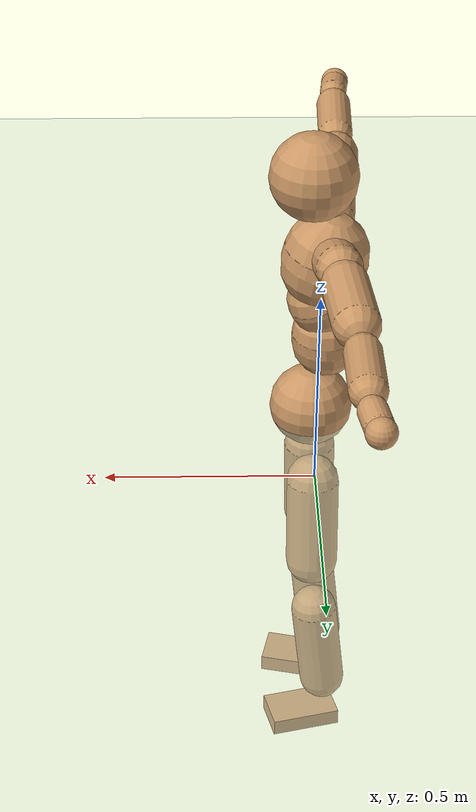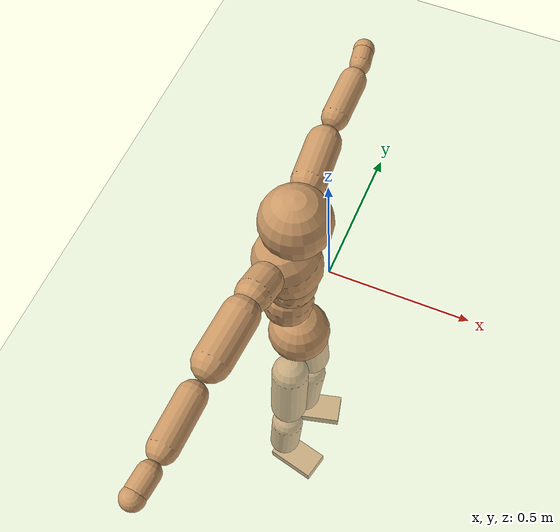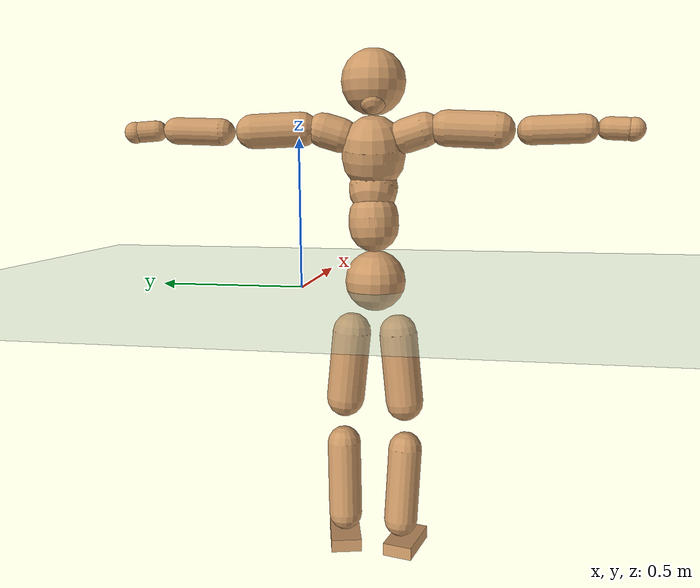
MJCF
<mujoco model="humanoid">
  <compiler coordinate="local"/>
  <default>
    <joint damping="0.0" armature="0.01" stiffness="0.0" limited="true"/>
    <geom conaffinity="1" condim="3" contype="7" margin="0.001" rgba="0.8 0.6 .4 1"/>
  </default>
  <asset>
    <texture type="skybox" builtin="gradient" rgb1=".4 .5 .6" rgb2="0 0 0" width="100" height="100"/>
    <texture builtin="flat" height="1278" mark="cross" markrgb="1 1 1" name="texgeom" random="0.01" rgb1="0.8 0.6 0.4" rgb2="0.8 0.6 0.4" type="cube" width="127"/>
    <texture builtin="checker" height="100" name="texplane" rgb1="0 0 0" rgb2="0.8 0.8 0.8" type="2d" width="100"/>
    <material name="MatPlane" reflectance="0.5" shininess="1" specular="1" texrepeat="60 60" texture="texplane"/>
    <material name="geom" texture="texgeom" texuniform="true"/>
  </asset>
  <worldbody>
    <light cutoff="100" diffuse="1 1 1" dir="-0 0 -1.3" directional="true" exponent="1" pos="0 0 1.3" specular=".1 .1 .1"/>
    <geom conaffinity="1" condim="3" name="floor" pos="0 0 0" rgba="0.8 0.9 0.8 1" size="100 100 .2" type="plane" material="MatPlane"/>
    <body name="Pelvis" pos="-0.0016 -0.2571 0.0302">
      <freejoint name="Pelvis"/>
      <geom type="sphere" contype="1" conaffinity="1" density="500" size="0.1020" pos="0.0000 0.0000 0.0000" name="Pelvis"/>
      <body name="L_Hip" pos="-0.0053 0.0731 -0.0992">
        <joint name="L_Hip_x" type="hinge" pos="0 0 0" axis="1 0 0" stiffness="800" damping="80" armature="0.02" range="-180.0000 180.0000"/>
        <joint name="L_Hip_y" type="hinge" pos="0 0 0" axis="0 1 0" stiffness="800" damping="80" armature="0.02" range="-180.0000 180.0000"/>
        <joint name="L_Hip_z" type="hinge" pos="0 0 0" axis="0 0 1" stiffness="800" damping="80" armature="0.02" range="-180.0000 180.0000"/>
        <geom type="capsule" contype="1" conaffinity="1" density="500" fromto="-0.0007 0.0076 -0.0785 -0.0026 0.0303 -0.3141" size="0.0651" name="L_Hip"/>
        <body name="L_Knee" pos="-0.0033 0.0379 -0.3927">
          <joint name="L_Knee_x" type="hinge" pos="0 0 0" axis="1 0 0" stiffness="800" damping="80" armature="0.02" range="-180.0000 180.0000"/>
          <joint name="L_Knee_y" type="hinge" pos="0 0 0" axis="0 1 0" stiffness="800" damping="80" armature="0.02" range="-180.0000 180.0000"/>
          <joint name="L_Knee_z" type="hinge" pos="0 0 0" axis="0 0 1" stiffness="800" damping="80" armature="0.02" range="-180.0000 180.0000"/>
          <geom type="capsule" contype="1" conaffinity="1" density="500" fromto="-0.0094 -0.0031 -0.0835 -0.0374 -0.0125 -0.3338" size="0.0579" name="L_Knee"/>
          <body name="L_Ankle" pos="-0.0468 -0.0156 -0.4173">
            <joint name="L_Ankle_x" type="hinge" pos="0 0 0" axis="1 0 0" stiffness="800" damping="80" armature="0.02" range="-180.0000 180.0000"/>
            <joint name="L_Ankle_y" type="hinge" pos="0 0 0" axis="0 1 0" stiffness="800" damping="80" armature="0.02" range="-180.0000 180.0000"/>
            <joint name="L_Ankle_z" type="hinge" pos="0 0 0" axis="0 0 1" stiffness="800" damping="80" armature="0.02" range="-180.0000 180.0000"/>
            <geom type="box" contype="1" conaffinity="1" density="500" pos="0.0631 0.0155 -0.0291" size="0.0888 0.0531 0.022" quat="0.9927 0.0000 0.0000 0.1205" name="L_Ankle"/>
            <body name="L_Toe" pos="0.1261 0.0311 -0.0582">
              <joint name="L_Toe_x" type="hinge" pos="0 0 0" axis="1 0 0" stiffness="500" damping="50" armature="0.02" range="-180.0000 180.0000"/>
              <joint name="L_Toe_y" type="hinge" pos="0 0 0" axis="0 1 0" stiffness="500" damping="50" armature="0.02" range="-180.0000 180.0000"/>
              <joint name="L_Toe_z" type="hinge" pos="0 0 0" axis="0 0 1" stiffness="500" damping="50" armature="0.02" range="-180.0000 180.0000"/>
              <geom type="box" contype="1" conaffinity="1" density="500" pos="0.0000 0.0000 0.0290" size="0.0011 0.0025 0.0011" quat="0.9920 0.0000 0.0000 0.1260" name="L_Toe"/>
            </body>
          </body>
        </body>
      </body>
      <body name="R_Hip" pos="-0.0036 -0.0709 -0.0978">
        <joint name="R_Hip_x" type="hinge" pos="0 0 0" axis="1 0 0" stiffness="800" damping="80" armature="0.02" range="-180.0000 180.0000"/>
        <joint name="R_Hip_y" type="hinge" pos="0 0 0" axis="0 1 0" stiffness="800" damping="80" armature="0.02" range="-180.0000 180.0000"/>
        <joint name="R_Hip_z" type="hinge" pos="0 0 0" axis="0 0 1" stiffness="800" damping="80" armature="0.02" range="-180.0000 180.0000"/>
        <geom type="capsule" contype="1" conaffinity="1" density="500" fromto="-0.0018 -0.0083 -0.0804 -0.0073 -0.0330 -0.3215" size="0.064" name="R_Hip"/>
        <body name="R_Knee" pos="-0.0092 -0.0413 -0.4018">
          <joint name="R_Knee_x" type="hinge" pos="0 0 0" axis="1 0 0" stiffness="800" damping="80" armature="0.02" range="-180.0000 180.0000"/>
          <joint name="R_Knee_y" type="hinge" pos="0 0 0" axis="0 1 0" stiffness="800" damping="80" armature="0.02" range="-180.0000 180.0000"/>
          <joint name="R_Knee_z" type="hinge" pos="0 0 0" axis="0 0 1" stiffness="800" damping="80" armature="0.02" range="-180.0000 180.0000"/>
          <geom type="capsule" contype="1" conaffinity="1" density="500" fromto="-0.0091 0.0035 -0.0838 -0.0365 0.0141 -0.3351" size="0.0578" name="R_Knee"/>
          <body name="R_Ankle" pos="-0.0456 0.0176 -0.4189">
            <joint name="R_Ankle_x" type="hinge" pos="0 0 0" axis="1 0 0" stiffness="800" damping="80" armature="0.02" range="-180.0000 180.0000"/>
            <joint name="R_Ankle_y" type="hinge" pos="0 0 0" axis="0 1 0" stiffness="800" damping="80" armature="0.02" range="-180.0000 180.0000"/>
            <joint name="R_Ankle_z" type="hinge" pos="0 0 0" axis="0 0 1" stiffness="800" damping="80" armature="0.02" range="-180.0000 180.0000"/>
            <geom type="box" contype="1" conaffinity="1" density="500" pos="0.0654 -0.0151 -0.0256" size="0.0911 0.0516 0.0223" quat="0.9936 0.0000 0.0000 -0.1130" name="R_Ankle"/>
            <body name="R_Toe" pos="0.1308 -0.0301 -0.0512">
              <joint name="R_Toe_x" type="hinge" pos="0 0 0" axis="1 0 0" stiffness="500" damping="50" armature="0.02" range="-180.0000 180.0000"/>
              <joint name="R_Toe_y" type="hinge" pos="0 0 0" axis="0 1 0" stiffness="500" damping="50" armature="0.02" range="-180.0000 180.0000"/>
              <joint name="R_Toe_z" type="hinge" pos="0 0 0" axis="0 0 1" stiffness="500" damping="50" armature="0.02" range="-180.0000 180.0000"/>
              <geom type="box" contype="1" conaffinity="1" density="500" pos="0.0000 0.0000 0.0262" size="0.0011 0.0025 0.0011" quat="0.9946 0.0000 0.0000 -0.1042" name="R_Toe"/>
            </body>
          </body>
        </body>
      </body>
      <body name="Torso" pos="-0.0333 -0.0027 0.1213">
        <joint name="Torso_x" type="hinge" pos="0 0 0" axis="1 0 0" stiffness="1000" damping="100" armature="0.02" range="-180.0000 180.0000"/>
        <joint name="Torso_y" type="hinge" pos="0 0 0" axis="0 1 0" stiffness="1000" damping="100" armature="0.02" range="-180.0000 180.0000"/>
        <joint name="Torso_z" type="hinge" pos="0 0 0" axis="0 0 1" stiffness="1000" damping="100" armature="0.02" range="-180.0000 180.0000"/>
        <geom type="capsule" contype="1" conaffinity="1" density="500" fromto="0.0023 0.0045 0.0935 0.0015 0.0030 0.0623" size="0.0824" name="Torso"/>
        <body name="Spine" pos="0.0039 0.0075 0.1558">
          <joint name="Spine_x" type="hinge" pos="0 0 0" axis="1 0 0" stiffness="1000" damping="100" armature="0.02" range="-180.0000 180.0000"/>
          <joint name="Spine_y" type="hinge" pos="0 0 0" axis="0 1 0" stiffness="1000" damping="100" armature="0.02" range="-180.0000 180.0000"/>
          <joint name="Spine_z" type="hinge" pos="0 0 0" axis="0 0 1" stiffness="1000" damping="100" armature="0.02" range="-180.0000 180.0000"/>
          <geom type="capsule" contype="1" conaffinity="1" density="500" fromto="0.0156 0.0002 0.0366 0.0104 0.0001 0.0244" size="0.0802" name="Spine"/>
          <body name="Chest" pos="0.0259 0.0003 0.061">
            <joint name="Chest_x" type="hinge" pos="0 0 0" axis="1 0 0" stiffness="1000" damping="100" armature="0.02" range="-180.0000 180.0000"/>
            <joint name="Chest_y" type="hinge" pos="0 0 0" axis="0 1 0" stiffness="1000" damping="100" armature="0.02" range="-180.0000 180.0000"/>
            <joint name="Chest_z" type="hinge" pos="0 0 0" axis="0 0 1" stiffness="1000" damping="100" armature="0.02" range="-180.0000 180.0000"/>
            <geom type="capsule" contype="1" conaffinity="1" density="500" fromto="-0.0231 -0.0014 0.0994 -0.0154 -0.0009 0.0662" size="0.1032" name="Chest"/>
            <body name="Neck" pos="-0.042 -0.003 0.2355">
              <joint name="Neck_x" type="hinge" pos="0 0 0" axis="1 0 0" stiffness="500" damping="50" armature="0.02" range="-180.0000 180.0000"/>
              <joint name="Neck_y" type="hinge" pos="0 0 0" axis="0 1 0" stiffness="500" damping="50" armature="0.02" range="-180.0000 180.0000"/>
              <joint name="Neck_z" type="hinge" pos="0 0 0" axis="0 0 1" stiffness="500" damping="50" armature="0.02" range="-180.0000 180.0000"/>
              <geom type="capsule" contype="1" conaffinity="1" density="500" fromto="0.0109 0.0014 0.0145 0.0438 0.0055 0.0581" size="0.0469" name="Neck"/>
              <body name="Head" pos="0.0547 0.0068 0.0727">
                <joint name="Head_x" type="hinge" pos="0 0 0" axis="1 0 0" stiffness="500" damping="50" armature="0.02" range="-180.0000 180.0000"/>
                <joint name="Head_y" type="hinge" pos="0 0 0" axis="0 1 0" stiffness="500" damping="50" armature="0.02" range="-180.0000 180.0000"/>
                <joint name="Head_z" type="hinge" pos="0 0 0" axis="0 0 1" stiffness="500" damping="50" armature="0.02" range="-180.0000 180.0000"/>
                <geom type="sphere" contype="1" conaffinity="1" density="500" size="0.1058" pos="0.0000 0.0000 0.0000" name="Head"/>
              </body>
            </body>
            <body name="L_Thorax" pos="-0.0342 0.082 0.1325">
              <joint name="L_Thorax_x" type="hinge" pos="0 0 0" axis="1 0 0" stiffness="500" damping="50" armature="0.02" range="-180.0000 180.0000"/>
              <joint name="L_Thorax_y" type="hinge" pos="0 0 0" axis="0 1 0" stiffness="500" damping="50" armature="0.02" range="-180.0000 180.0000"/>
              <joint name="L_Thorax_z" type="hinge" pos="0 0 0" axis="0 0 1" stiffness="500" damping="50" armature="0.02" range="-180.0000 180.0000"/>
              <geom type="capsule" contype="1" conaffinity="1" density="500" fromto="-0.0020 0.0189 0.0056 -0.0079 0.0755 0.0225" size="0.0555" name="L_Thorax"/>
              <body name="L_Shoulder" pos="-0.0099 0.0944 0.0281">
                <joint name="L_Shoulder_x" type="hinge" pos="0 0 0" axis="1 0 0" stiffness="500" damping="50" armature="0.02" range="-720.0000 720.0000"/>
                <joint name="L_Shoulder_y" type="hinge" pos="0 0 0" axis="0 1 0" stiffness="500" damping="50" armature="0.02" range="-720.0000 720.0000"/>
                <joint name="L_Shoulder_z" type="hinge" pos="0 0 0" axis="0 0 1" stiffness="500" damping="50" armature="0.02" range="-720.0000 720.0000"/>
                <geom type="capsule" contype="1" conaffinity="1" density="500" fromto="-0.0054 0.0527 -0.0025 -0.0217 0.2109 -0.0099" size="0.0553" name="L_Shoulder"/>
                <body name="L_Elbow" pos="-0.0271 0.2637 -0.0124">
                  <joint name="L_Elbow_x" type="hinge" pos="0 0 0" axis="1 0 0" stiffness="500" damping="50" armature="0.02" range="-720.0000 720.0000"/>
                  <joint name="L_Elbow_y" type="hinge" pos="0 0 0" axis="0 1 0" stiffness="500" damping="50" armature="0.02" range="-720.0000 720.0000"/>
                  <joint name="L_Elbow_z" type="hinge" pos="0 0 0" axis="0 0 1" stiffness="500" damping="50" armature="0.02" range="-720.0000 720.0000"/>
                  <geom type="capsule" contype="1" conaffinity="1" density="500" fromto="-0.0003 0.0510 0.0017 -0.0011 0.2041 0.0067" size="0.0433" name="L_Elbow"/>
                  <body name="L_Wrist" pos="-0.0014 0.2552 0.0083">
                    <joint name="L_Wrist_x" type="hinge" pos="0 0 0" axis="1 0 0" stiffness="300" damping="30" armature="0.02" range="-180.0000 180.0000"/>
                    <joint name="L_Wrist_y" type="hinge" pos="0 0 0" axis="0 1 0" stiffness="300" damping="30" armature="0.02" range="-180.0000 180.0000"/>
                    <joint name="L_Wrist_z" type="hinge" pos="0 0 0" axis="0 0 1" stiffness="300" damping="30" armature="0.02" range="-180.0000 180.0000"/>
                    <geom type="capsule" contype="1" conaffinity="1" density="500" fromto="-0.0032 0.0175 -0.0014 -0.0130 0.0700 -0.0056" size="0.0335" name="L_Wrist"/>
                    <body name="L_Hand" pos="-0.0162 0.0875 -0.007">
                      <joint name="L_Hand_x" type="hinge" pos="0 0 0" axis="1 0 0" stiffness="300" damping="30" armature="0.02" range="-180.0000 180.0000"/>
                      <joint name="L_Hand_y" type="hinge" pos="0 0 0" axis="0 1 0" stiffness="300" damping="30" armature="0.02" range="-180.0000 180.0000"/>
                      <joint name="L_Hand_z" type="hinge" pos="0 0 0" axis="0 0 1" stiffness="300" damping="30" armature="0.02" range="-180.0000 180.0000"/>
                      <geom type="sphere" contype="1" conaffinity="1" density="500" size="0.0350" pos="0.0000 0.0000 0.0000" name="L_Hand"/>
                    </body>
                  </body>
                </body>
              </body>
            </body>
            <body name="R_Thorax" pos="-0.0391 -0.0859 0.1288">
              <joint name="R_Thorax_x" type="hinge" pos="0 0 0" axis="1 0 0" stiffness="500" damping="50" armature="0.02" range="-180.0000 180.0000"/>
              <joint name="R_Thorax_y" type="hinge" pos="0 0 0" axis="0 1 0" stiffness="500" damping="50" armature="0.02" range="-180.0000 180.0000"/>
              <joint name="R_Thorax_z" type="hinge" pos="0 0 0" axis="0 0 1" stiffness="500" damping="50" armature="0.02" range="-180.0000 180.0000"/>
              <geom type="capsule" contype="1" conaffinity="1" density="500" fromto="-0.0015 -0.0203 0.0064 -0.0061 -0.0813 0.0254" size="0.0547" name="R_Thorax"/>
              <body name="R_Shoulder" pos="-0.0076 -0.1016 0.0318">
                <joint name="R_Shoulder_x" type="hinge" pos="0 0 0" axis="1 0 0" stiffness="500" damping="50" armature="0.02" range="-720.0000 720.0000"/>
                <joint name="R_Shoulder_y" type="hinge" pos="0 0 0" axis="0 1 0" stiffness="500" damping="50" armature="0.02" range="-720.0000 720.0000"/>
                <joint name="R_Shoulder_z" type="hinge" pos="0 0 0" axis="0 0 1" stiffness="500" damping="50" armature="0.02" range="-720.0000 720.0000"/>
                <geom type="capsule" contype="1" conaffinity="1" density="500" fromto="-0.0046 -0.0518 -0.0027 -0.0184 -0.2072 -0.0110" size="0.0568" name="R_Shoulder"/>
                <body name="R_Elbow" pos="-0.0231 -0.259 -0.0137">
                  <joint name="R_Elbow_x" type="hinge" pos="0 0 0" axis="1 0 0" stiffness="500" damping="50" armature="0.02" range="-720.0000 720.0000"/>
                  <joint name="R_Elbow_y" type="hinge" pos="0 0 0" axis="0 1 0" stiffness="500" damping="50" armature="0.02" range="-720.0000 720.0000"/>
                  <joint name="R_Elbow_z" type="hinge" pos="0 0 0" axis="0 0 1" stiffness="500" damping="50" armature="0.02" range="-720.0000 720.0000"/>
                  <geom type="capsule" contype="1" conaffinity="1" density="500" fromto="-0.0014 -0.0523 0.0014 -0.0054 -0.2093 0.0057" size="0.0437" name="R_Elbow"/>
                  <body name="R_Wrist" pos="-0.0068 -0.2616 0.0071">
                    <joint name="R_Wrist_x" type="hinge" pos="0 0 0" axis="1 0 0" stiffness="300" damping="30" armature="0.02" range="-180.0000 180.0000"/>
                    <joint name="R_Wrist_y" type="hinge" pos="0 0 0" axis="0 1 0" stiffness="300" damping="30" armature="0.02" range="-180.0000 180.0000"/>
                    <joint name="R_Wrist_z" type="hinge" pos="0 0 0" axis="0 0 1" stiffness="300" damping="30" armature="0.02" range="-180.0000 180.0000"/>
                    <geom type="capsule" contype="1" conaffinity="1" density="500" fromto="-0.0020 -0.0176 -0.0010 -0.0081 -0.0706 -0.0041" size="0.0343" name="R_Wrist"/>
                    <body name="R_Hand" pos="-0.0102 -0.0882 -0.0051">
                      <joint name="R_Hand_x" type="hinge" pos="0 0 0" axis="1 0 0" stiffness="300" damping="30" armature="0.02" range="-180.0000 180.0000"/>
                      <joint name="R_Hand_y" type="hinge" pos="0 0 0" axis="0 1 0" stiffness="300" damping="30" armature="0.02" range="-180.0000 180.0000"/>
                      <joint name="R_Hand_z" type="hinge" pos="0 0 0" axis="0 0 1" stiffness="300" damping="30" armature="0.02" range="-180.0000 180.0000"/>
                      <geom type="sphere" contype="1" conaffinity="1" density="500" size="0.0355" pos="0.0000 0.0000 0.0000" name="R_Hand"/>
                    </body>
                  </body>
                </body>
              </body>
            </body>
          </body>
        </body>
      </body>
    </body>
  </worldbody>
  <actuator>
    <motor name="L_Hip_x" joint="L_Hip_x" gear="500"/>
    <motor name="L_Hip_y" joint="L_Hip_y" gear="500"/>
    <motor name="L_Hip_z" joint="L_Hip_z" gear="500"/>
    <motor name="L_Knee_x" joint="L_Knee_x" gear="500"/>
    <motor name="L_Knee_y" joint="L_Knee_y" gear="500"/>
    <motor name="L_Knee_z" joint="L_Knee_z" gear="500"/>
    <motor name="L_Ankle_x" joint="L_Ankle_x" gear="500"/>
    <motor name="L_Ankle_y" joint="L_Ankle_y" gear="500"/>
    <motor name="L_Ankle_z" joint="L_Ankle_z" gear="500"/>
    <motor name="L_Toe_x" joint="L_Toe_x" gear="500"/>
    <motor name="L_Toe_y" joint="L_Toe_y" gear="500"/>
    <motor name="L_Toe_z" joint="L_Toe_z" gear="500"/>
    <motor name="R_Hip_x" joint="R_Hip_x" gear="500"/>
    <motor name="R_Hip_y" joint="R_Hip_y" gear="500"/>
    <motor name="R_Hip_z" joint="R_Hip_z" gear="500"/>
    <motor name="R_Knee_x" joint="R_Knee_x" gear="500"/>
    <motor name="R_Knee_y" joint="R_Knee_y" gear="500"/>
    <motor name="R_Knee_z" joint="R_Knee_z" gear="500"/>
    <motor name="R_Ankle_x" joint="R_Ankle_x" gear="500"/>
    <motor name="R_Ankle_y" joint="R_Ankle_y" gear="500"/>
    <motor name="R_Ankle_z" joint="R_Ankle_z" gear="500"/>
    <motor name="R_Toe_x" joint="R_Toe_x" gear="500"/>
    <motor name="R_Toe_y" joint="R_Toe_y" gear="500"/>
    <motor name="R_Toe_z" joint="R_Toe_z" gear="500"/>
    <motor name="Torso_x" joint="Torso_x" gear="500"/>
    <motor name="Torso_y" joint="Torso_y" gear="500"/>
    <motor name="Torso_z" joint="Torso_z" gear="500"/>
    <motor name="Spine_x" joint="Spine_x" gear="500"/>
    <motor name="Spine_y" joint="Spine_y" gear="500"/>
    <motor name="Spine_z" joint="Spine_z" gear="500"/>
    <motor name="Chest_x" joint="Chest_x" gear="500"/>
    <motor name="Chest_y" joint="Chest_y" gear="500"/>
    <motor name="Chest_z" joint="Chest_z" gear="500"/>
    <motor name="Neck_x" joint="Neck_x" gear="500"/>
    <motor name="Neck_y" joint="Neck_y" gear="500"/>
    <motor name="Neck_z" joint="Neck_z" gear="500"/>
    <motor name="Head_x" joint="Head_x" gear="500"/>
    <motor name="Head_y" joint="Head_y" gear="500"/>
    <motor name="Head_z" joint="Head_z" gear="500"/>
    <motor name="L_Thorax_x" joint="L_Thorax_x" gear="500"/>
    <motor name="L_Thorax_y" joint="L_Thorax_y" gear="500"/>
    <motor name="L_Thorax_z" joint="L_Thorax_z" gear="500"/>
    <motor name="L_Shoulder_x" joint="L_Shoulder_x" gear="500"/>
    <motor name="L_Shoulder_y" joint="L_Shoulder_y" gear="500"/>
    <motor name="L_Shoulder_z" joint="L_Shoulder_z" gear="500"/>
    <motor name="L_Elbow_x" joint="L_Elbow_x" gear="500"/>
    <motor name="L_Elbow_y" joint="L_Elbow_y" gear="500"/>
    <motor name="L_Elbow_z" joint="L_Elbow_z" gear="500"/>
    <motor name="L_Wrist_x" joint="L_Wrist_x" gear="500"/>
    <motor name="L_Wrist_y" joint="L_Wrist_y" gear="500"/>
    <motor name="L_Wrist_z" joint="L_Wrist_z" gear="500"/>
    <motor name="L_Hand_x" joint="L_Hand_x" gear="500"/>
    <motor name="L_Hand_y" joint="L_Hand_y" gear="500"/>
    <motor name="L_Hand_z" joint="L_Hand_z" gear="500"/>
    <motor name="R_Thorax_x" joint="R_Thorax_x" gear="500"/>
    <motor name="R_Thorax_y" joint="R_Thorax_y" gear="500"/>
    <motor name="R_Thorax_z" joint="R_Thorax_z" gear="500"/>
    <motor name="R_Shoulder_x" joint="R_Shoulder_x" gear="500"/>
    <motor name="R_Shoulder_y" joint="R_Shoulder_y" gear="500"/>
    <motor name="R_Shoulder_z" joint="R_Shoulder_z" gear="500"/>
    <motor name="R_Elbow_x" joint="R_Elbow_x" gear="500"/>
    <motor name="R_Elbow_y" joint="R_Elbow_y" gear="500"/>
    <motor name="R_Elbow_z" joint="R_Elbow_z" gear="500"/>
    <motor name="R_Wrist_x" joint="R_Wrist_x" gear="500"/>
    <motor name="R_Wrist_y" joint="R_Wrist_y" gear="500"/>
    <motor name="R_Wrist_z" joint="R_Wrist_z" gear="500"/>
    <motor name="R_Hand_x" joint="R_Hand_x" gear="500"/>
    <motor name="R_Hand_y" joint="R_Hand_y" gear="500"/>
    <motor name="R_Hand_z" joint="R_Hand_z" gear="500"/>
  </actuator>
  <contact>
    <exclude body1="Torso" body2="Chest"/>
    <exclude body1="Head" body2="Chest"/>
    <exclude body1="R_Knee" body2="R_Toe"/>
    <exclude body1="R_Knee" body2="L_Ankle"/>
    <exclude body1="R_Knee" body2="L_Toe"/>
    <exclude body1="L_Knee" body2="L_Toe"/>
    <exclude body1="L_Knee" body2="R_Ankle"/>
    <exclude body1="L_Knee" body2="R_Toe"/>
    <exclude body1="L_Shoulder" body2="Chest"/>
    <exclude body1="R_Shoulder" body2="Chest"/>
  </contact>
  <sensor/>
  <size njmax="700" nconmax="700"/>
</mujoco>
